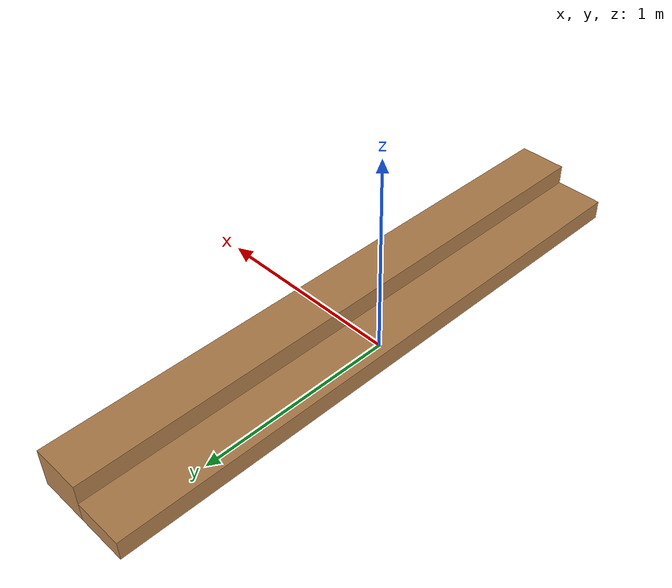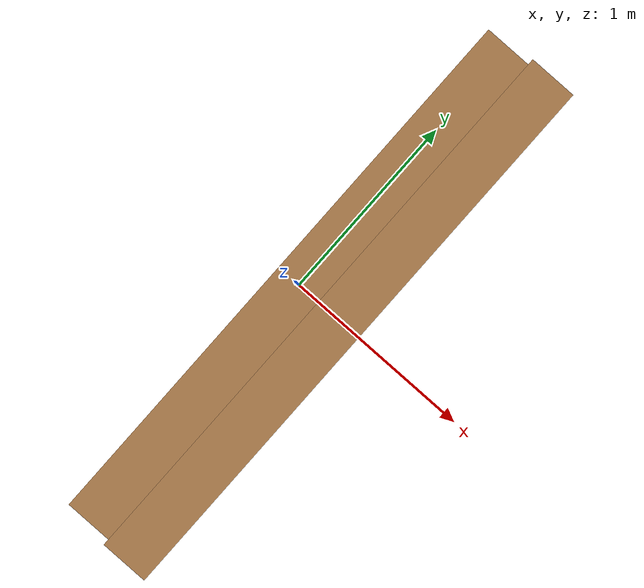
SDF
<?xml version="1.0" ?>
<sdf version="1.4">
  <model name="stairs">
    <static>1</static>
    <link name="link">
            <collision name="stairs_collision0">
        <pose>0.0 0.0 0.05 0.0 0.0 0.0</pose>
        <geometry>
          <box>
            <size>0.25 3.0 0.1</size>
          </box>
        </geometry>
        <surface>
          <bounce />
          <friction>
            <ode>
              <mu>0.7</mu>
              <mu2>0.72</mu2>
            </ode>
          </friction>
          <contact>
            <ode>
              <kp>10000000.0</kp>
              <kd>1.0</kd>
              <min_depth>0.0</min_depth>
              <max_vel>0.0</max_vel>
            </ode>
          </contact>
        </surface>
      </collision>
      <visual name="stairs_visual0">
        <pose>0.0 0.0 0.05 0.0 0.0 0.0</pose>
        <geometry>
          <box>
            <size>0.25 3.0 0.1</size>
          </box>
        </geometry>
        <material>
          <script>
            <uri>file://media/materials/scripts/gazebo.material</uri>
            <name>Gazebo/Wood</name>
          </script>
        </material>
      </visual>
      <collision name="stairs_collision1">
        <pose>0.25 0.0 0.1 0.0 0.0 0.0</pose>
        <geometry>
          <box>
            <size>0.25 3.0 0.2</size>
          </box>
        </geometry>
        <surface>
          <bounce />
          <friction>
            <ode>
              <mu>0.7</mu>
              <mu2>0.72</mu2>
            </ode>
          </friction>
          <contact>
            <ode>
              <kp>10000000.0</kp>
              <kd>1.0</kd>
              <min_depth>0.0</min_depth>
              <max_vel>0.0</max_vel>
            </ode>
          </contact>
        </surface>
      </collision>
      <visual name="stairs_visual1">
        <pose>0.25 0.0 0.1 0.0 0.0 0.0</pose>
        <geometry>
          <box>
            <size>0.25 3.0 0.2</size>
          </box>
        </geometry>
        <material>
          <script>
            <uri>file://media/materials/scripts/gazebo.material</uri>
            <name>Gazebo/Wood</name>
          </script>
        </material>
      </visual>

      <velocity_decay>
        <linear>0.000000</linear>
        <angular>0.000000</angular>
      </velocity_decay>
      <self_collide>0</self_collide>
      <kinematic>0</kinematic>
      <gravity>1</gravity>
    </link>
  </model>
</sdf>
